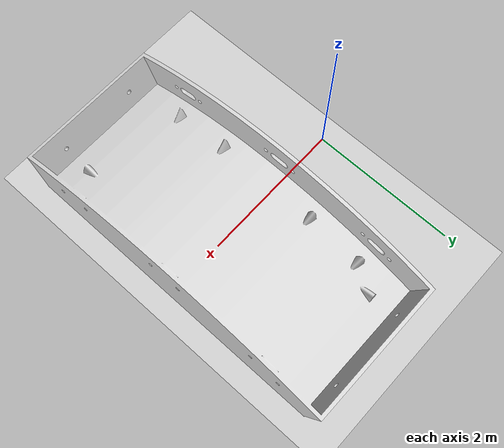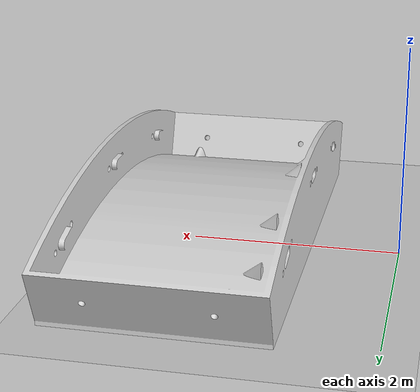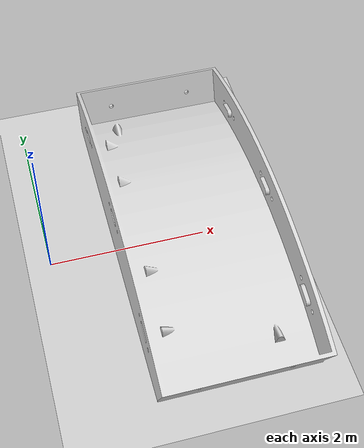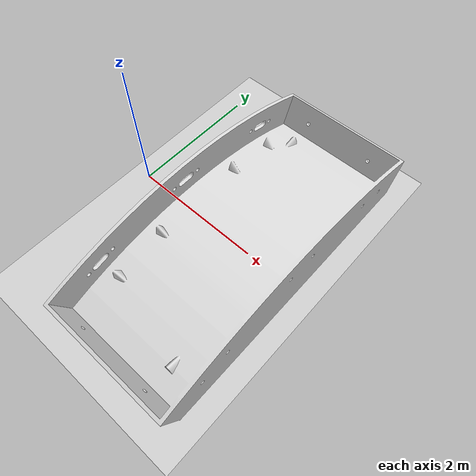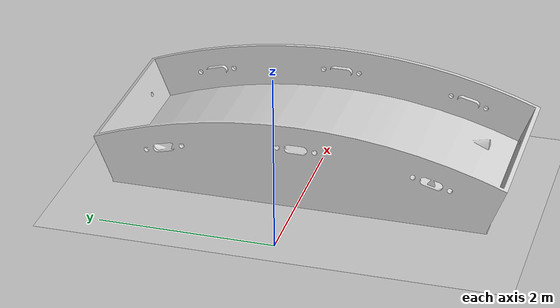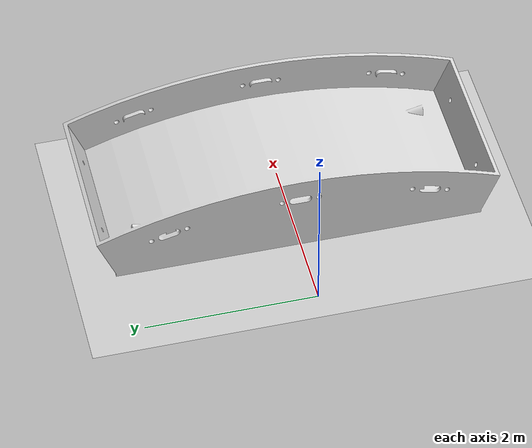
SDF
<?xml version="1.0"?>
<sdf version="1.4">
  <world name="default">
    <include>
      <uri>model://sun</uri>
    </include>
    <include>
      <uri>model://ground_plane</uri>
    </include>
    <model name="标准块A1">
      <pose>0.843 -2.356 -5.4  1.57 0 1.57</pose>
      <static>true</static>
      <link name="up">
        <visual name="visual">
          <geometry>
            <mesh>
                <uri>model://A1/meshes/标准块A1.dae</uri>
                <scale>0.001 0.001 0.001</scale>
            </mesh>
          </geometry>
        </visual>
        <collision name="collision">
          <geometry>
            <mesh>
                <uri>model://A1/meshes/标准块A1.dae</uri>
                <scale>0.001 0.001 0.001</scale>
            </mesh>
          </geometry>
        </collision>
      </link>
    </model>
  </world>
</sdf>
